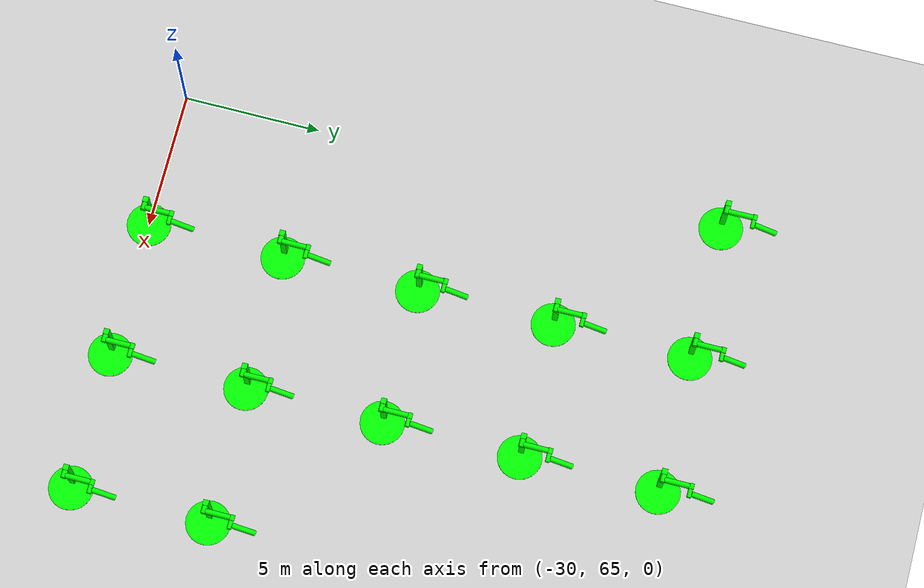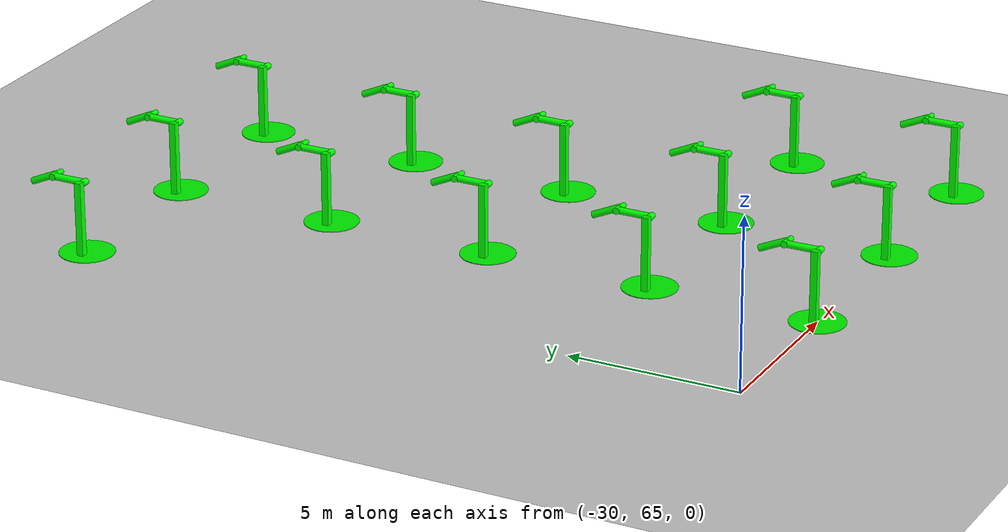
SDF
<sdf version="1.6">
 <world name="double_pendulums">
  <model name="ground_plane">
   <static>true</static>
   <link name="link">
    <collision name="collision">
     <geometry><plane><normal>0 0 1</normal><size>100 100</size></plane></geometry>
    </collision>
    <visual name="visual">
     <geometry><plane><normal>0 0 1</normal><size>100 100</size></plane></geometry>
     <material>
      <ambient>0.8 0.8 0.8 1</ambient>
      <diffuse>0.8 0.8 0.8 1</diffuse>
      <specular>0.8 0.8 0.8 1</specular>
     </material>
    </visual>
   </link>
  </model>
  <model name="dbl_pendulum_330">
   <pose>-25 65 0 0 0 0</pose>
   <link name="base">
    <inertial><mass>100</mass></inertial>
    <visual name="vis_plate_on_ground">
     <pose>0 0 0.01 0 0 0</pose>
     <geometry><cylinder><radius>0.8</radius><length>0.02</length></cylinder></geometry>
     <material><ambient>0 1 0 1</ambient><diffuse>0 1 0 1</diffuse><specular>0 1 0 1</specular></material>
    </visual>
    <visual name="vis_pole">
     <pose>-0.275 0 1.1 0 0 0</pose>
     <geometry><box><size>0.2 0.2 2.2</size></box></geometry>
     <material><ambient>0 1 0 1</ambient><diffuse>0 1 0 1</diffuse><specular>0 1 0 1</specular></material>
    </visual>
    <collision name="col_plate_on_ground">
     <pose>0 0 0.01 0 0 0</pose>
     <geometry><cylinder><radius>0.8</radius><length>0.02</length></cylinder></geometry>
    </collision>
    <collision name="col_pole">
     <pose>-0.275 0 1.1 0 0 0</pose>
     <geometry><box><size>0.2 0.2 2.2</size></box></geometry>
    </collision>
   </link>
   <link name="upper_link">
    <pose>0 0 2.1 -1.5708 0 0</pose>
    <inertial><pose>0 0 0.5 0 0 0</pose></inertial>
    <visual name="vis_upper_joint">
     <pose>-0.05 0 0 0 1.5708 0</pose>
     <geometry><cylinder><radius>0.1</radius><length>0.3</length></cylinder></geometry>
     <material><ambient>0 1 0 1</ambient><diffuse>0 1 0 1</diffuse><specular>0 1 0 1</specular></material>
    </visual>
    <visual name="vis_lower_joint">
     <pose>0 0 1.0 0 1.5708 0</pose>
     <geometry><cylinder><radius>0.1</radius><length>0.2</length></cylinder></geometry>
     <material><ambient>0 1 0 1</ambient><diffuse>0 1 0 1</diffuse><specular>0 1 0 1</specular></material>
    </visual>
    <visual name="vis_cylinder">
     <pose>0 0 0.5 0 0 0</pose>
     <geometry><cylinder><radius>0.1</radius><length>0.9</length></cylinder></geometry>
     <material><ambient>0 1 0 1</ambient><diffuse>0 1 0 1</diffuse><specular>0 1 0 1</specular></material>
    </visual>
    <collision name="col_upper_joint">
     <pose>-0.05 0 0 0 1.5708 0</pose>
     <geometry><cylinder><radius>0.1</radius><length>0.3</length></cylinder></geometry>
    </collision>
    <collision name="col_lower_joint">
     <pose>0 0 1.0 0 1.5708 0</pose>
     <geometry><cylinder><radius>0.1</radius><length>0.2</length></cylinder></geometry>
    </collision>
    <collision name="col_cylinder">
     <pose>0 0 0.5 0 0 0</pose>
     <geometry><cylinder><radius>0.1</radius><length>0.9</length></cylinder></geometry>
    </collision>
   </link>
   <link name="lower_link">
    <pose>0.25 1.0 2.1 -2 0 0</pose>
    <inertial><pose>0 0 0.5 0 0 0</pose></inertial>
    <visual name="vis_lower_joint">
     <pose>0 0 0 0 1.5708 0</pose>
     <geometry><cylinder><radius>0.08</radius><length>0.3</length></cylinder></geometry>
     <material><ambient>0 1 0 1</ambient><diffuse>0 1 0 1</diffuse><specular>0 1 0 1</specular></material>
    </visual>
    <visual name="vis_cylinder">
     <pose>0 0 0.5 0 0 0</pose>
     <geometry><cylinder><radius>0.1</radius><length>0.9</length></cylinder></geometry>
     <material><ambient>0 1 0 1</ambient><diffuse>0 1 0 1</diffuse><specular>0 1 0 1</specular></material>
    </visual>
    <collision name="col_lower_joint">
     <pose>0 0 0 0 1.5708 0</pose>
     <geometry><cylinder><radius>0.08</radius><length>0.3</length></cylinder></geometry>
    </collision>
    <collision name="col_cylinder">
     <pose>0 0 0.5 0 0 0</pose>
     <geometry><cylinder><radius>0.1</radius><length>0.9</length></cylinder></geometry>
    </collision>
   </link>
   <joint name="upper_joint" type="revolute">
    <parent>base</parent>
    <child>upper_link</child>
    <axis><xyz>1.0 0 0</xyz></axis>
   </joint>
   <joint name="lower_joint" type="revolute">
    <parent>upper_link</parent>
    <child>lower_link</child>
    <axis><xyz>1.0 0 0</xyz></axis>
   </joint>
  </model>
  <model name="dbl_pendulum_331">
   <pose>-20 65 0 0 0 0</pose>
   <link name="base">
    <inertial><mass>100</mass></inertial>
    <visual name="vis_plate_on_ground">
     <pose>0 0 0.01 0 0 0</pose>
     <geometry><cylinder><radius>0.8</radius><length>0.02</length></cylinder></geometry>
     <material><ambient>0 1 0 1</ambient><diffuse>0 1 0 1</diffuse><specular>0 1 0 1</specular></material>
    </visual>
    <visual name="vis_pole">
     <pose>-0.275 0 1.1 0 0 0</pose>
     <geometry><box><size>0.2 0.2 2.2</size></box></geometry>
     <material><ambient>0 1 0 1</ambient><diffuse>0 1 0 1</diffuse><specular>0 1 0 1</specular></material>
    </visual>
    <collision name="col_plate_on_ground">
     <pose>0 0 0.01 0 0 0</pose>
     <geometry><cylinder><radius>0.8</radius><length>0.02</length></cylinder></geometry>
    </collision>
    <collision name="col_pole">
     <pose>-0.275 0 1.1 0 0 0</pose>
     <geometry><box><size>0.2 0.2 2.2</size></box></geometry>
    </collision>
   </link>
   <link name="upper_link">
    <pose>0 0 2.1 -1.5708 0 0</pose>
    <inertial><pose>0 0 0.5 0 0 0</pose></inertial>
    <visual name="vis_upper_joint">
     <pose>-0.05 0 0 0 1.5708 0</pose>
     <geometry><cylinder><radius>0.1</radius><length>0.3</length></cylinder></geometry>
     <material><ambient>0 1 0 1</ambient><diffuse>0 1 0 1</diffuse><specular>0 1 0 1</specular></material>
    </visual>
    <visual name="vis_lower_joint">
     <pose>0 0 1.0 0 1.5708 0</pose>
     <geometry><cylinder><radius>0.1</radius><length>0.2</length></cylinder></geometry>
     <material><ambient>0 1 0 1</ambient><diffuse>0 1 0 1</diffuse><specular>0 1 0 1</specular></material>
    </visual>
    <visual name="vis_cylinder">
     <pose>0 0 0.5 0 0 0</pose>
     <geometry><cylinder><radius>0.1</radius><length>0.9</length></cylinder></geometry>
     <material><ambient>0 1 0 1</ambient><diffuse>0 1 0 1</diffuse><specular>0 1 0 1</specular></material>
    </visual>
    <collision name="col_upper_joint">
     <pose>-0.05 0 0 0 1.5708 0</pose>
     <geometry><cylinder><radius>0.1</radius><length>0.3</length></cylinder></geometry>
    </collision>
    <collision name="col_lower_joint">
     <pose>0 0 1.0 0 1.5708 0</pose>
     <geometry><cylinder><radius>0.1</radius><length>0.2</length></cylinder></geometry>
    </collision>
    <collision name="col_cylinder">
     <pose>0 0 0.5 0 0 0</pose>
     <geometry><cylinder><radius>0.1</radius><length>0.9</length></cylinder></geometry>
    </collision>
   </link>
   <link name="lower_link">
    <pose>0.25 1.0 2.1 -2 0 0</pose>
    <inertial><pose>0 0 0.5 0 0 0</pose></inertial>
    <visual name="vis_lower_joint">
     <pose>0 0 0 0 1.5708 0</pose>
     <geometry><cylinder><radius>0.08</radius><length>0.3</length></cylinder></geometry>
     <material><ambient>0 1 0 1</ambient><diffuse>0 1 0 1</diffuse><specular>0 1 0 1</specular></material>
    </visual>
    <visual name="vis_cylinder">
     <pose>0 0 0.5 0 0 0</pose>
     <geometry><cylinder><radius>0.1</radius><length>0.9</length></cylinder></geometry>
     <material><ambient>0 1 0 1</ambient><diffuse>0 1 0 1</diffuse><specular>0 1 0 1</specular></material>
    </visual>
    <collision name="col_lower_joint">
     <pose>0 0 0 0 1.5708 0</pose>
     <geometry><cylinder><radius>0.08</radius><length>0.3</length></cylinder></geometry>
    </collision>
    <collision name="col_cylinder">
     <pose>0 0 0.5 0 0 0</pose>
     <geometry><cylinder><radius>0.1</radius><length>0.9</length></cylinder></geometry>
    </collision>
   </link>
   <joint name="upper_joint" type="revolute">
    <parent>base</parent>
    <child>upper_link</child>
    <axis><xyz>1.0 0 0</xyz></axis>
   </joint>
   <joint name="lower_joint" type="revolute">
    <parent>upper_link</parent>
    <child>lower_link</child>
    <axis><xyz>1.0 0 0</xyz></axis>
   </joint>
  </model>
  <model name="dbl_pendulum_332">
   <pose>-15 65 0 0 0 0</pose>
   <link name="base">
    <inertial><mass>100</mass></inertial>
    <visual name="vis_plate_on_ground">
     <pose>0 0 0.01 0 0 0</pose>
     <geometry><cylinder><radius>0.8</radius><length>0.02</length></cylinder></geometry>
     <material><ambient>0 1 0 1</ambient><diffuse>0 1 0 1</diffuse><specular>0 1 0 1</specular></material>
    </visual>
    <visual name="vis_pole">
     <pose>-0.275 0 1.1 0 0 0</pose>
     <geometry><box><size>0.2 0.2 2.2</size></box></geometry>
     <material><ambient>0 1 0 1</ambient><diffuse>0 1 0 1</diffuse><specular>0 1 0 1</specular></material>
    </visual>
    <collision name="col_plate_on_ground">
     <pose>0 0 0.01 0 0 0</pose>
     <geometry><cylinder><radius>0.8</radius><length>0.02</length></cylinder></geometry>
    </collision>
    <collision name="col_pole">
     <pose>-0.275 0 1.1 0 0 0</pose>
     <geometry><box><size>0.2 0.2 2.2</size></box></geometry>
    </collision>
   </link>
   <link name="upper_link">
    <pose>0 0 2.1 -1.5708 0 0</pose>
    <inertial><pose>0 0 0.5 0 0 0</pose></inertial>
    <visual name="vis_upper_joint">
     <pose>-0.05 0 0 0 1.5708 0</pose>
     <geometry><cylinder><radius>0.1</radius><length>0.3</length></cylinder></geometry>
     <material><ambient>0 1 0 1</ambient><diffuse>0 1 0 1</diffuse><specular>0 1 0 1</specular></material>
    </visual>
    <visual name="vis_lower_joint">
     <pose>0 0 1.0 0 1.5708 0</pose>
     <geometry><cylinder><radius>0.1</radius><length>0.2</length></cylinder></geometry>
     <material><ambient>0 1 0 1</ambient><diffuse>0 1 0 1</diffuse><specular>0 1 0 1</specular></material>
    </visual>
    <visual name="vis_cylinder">
     <pose>0 0 0.5 0 0 0</pose>
     <geometry><cylinder><radius>0.1</radius><length>0.9</length></cylinder></geometry>
     <material><ambient>0 1 0 1</ambient><diffuse>0 1 0 1</diffuse><specular>0 1 0 1</specular></material>
    </visual>
    <collision name="col_upper_joint">
     <pose>-0.05 0 0 0 1.5708 0</pose>
     <geometry><cylinder><radius>0.1</radius><length>0.3</length></cylinder></geometry>
    </collision>
    <collision name="col_lower_joint">
     <pose>0 0 1.0 0 1.5708 0</pose>
     <geometry><cylinder><radius>0.1</radius><length>0.2</length></cylinder></geometry>
    </collision>
    <collision name="col_cylinder">
     <pose>0 0 0.5 0 0 0</pose>
     <geometry><cylinder><radius>0.1</radius><length>0.9</length></cylinder></geometry>
    </collision>
   </link>
   <link name="lower_link">
    <pose>0.25 1.0 2.1 -2 0 0</pose>
    <inertial><pose>0 0 0.5 0 0 0</pose></inertial>
    <visual name="vis_lower_joint">
     <pose>0 0 0 0 1.5708 0</pose>
     <geometry><cylinder><radius>0.08</radius><length>0.3</length></cylinder></geometry>
     <material><ambient>0 1 0 1</ambient><diffuse>0 1 0 1</diffuse><specular>0 1 0 1</specular></material>
    </visual>
    <visual name="vis_cylinder">
     <pose>0 0 0.5 0 0 0</pose>
     <geometry><cylinder><radius>0.1</radius><length>0.9</length></cylinder></geometry>
     <material><ambient>0 1 0 1</ambient><diffuse>0 1 0 1</diffuse><specular>0 1 0 1</specular></material>
    </visual>
    <collision name="col_lower_joint">
     <pose>0 0 0 0 1.5708 0</pose>
     <geometry><cylinder><radius>0.08</radius><length>0.3</length></cylinder></geometry>
    </collision>
    <collision name="col_cylinder">
     <pose>0 0 0.5 0 0 0</pose>
     <geometry><cylinder><radius>0.1</radius><length>0.9</length></cylinder></geometry>
    </collision>
   </link>
   <joint name="upper_joint" type="revolute">
    <parent>base</parent>
    <child>upper_link</child>
    <axis><xyz>1.0 0 0</xyz></axis>
   </joint>
   <joint name="lower_joint" type="revolute">
    <parent>upper_link</parent>
    <child>lower_link</child>
    <axis><xyz>1.0 0 0</xyz></axis>
   </joint>
  </model>
  <model name="dbl_pendulum_355">
   <pose>-25 70 0 0 0 0</pose>
   <link name="base">
    <inertial><mass>100</mass></inertial>
    <visual name="vis_plate_on_ground">
     <pose>0 0 0.01 0 0 0</pose>
     <geometry><cylinder><radius>0.8</radius><length>0.02</length></cylinder></geometry>
     <material><ambient>0 1 0 1</ambient><diffuse>0 1 0 1</diffuse><specular>0 1 0 1</specular></material>
    </visual>
    <visual name="vis_pole">
     <pose>-0.275 0 1.1 0 0 0</pose>
     <geometry><box><size>0.2 0.2 2.2</size></box></geometry>
     <material><ambient>0 1 0 1</ambient><diffuse>0 1 0 1</diffuse><specular>0 1 0 1</specular></material>
    </visual>
    <collision name="col_plate_on_ground">
     <pose>0 0 0.01 0 0 0</pose>
     <geometry><cylinder><radius>0.8</radius><length>0.02</length></cylinder></geometry>
    </collision>
    <collision name="col_pole">
     <pose>-0.275 0 1.1 0 0 0</pose>
     <geometry><box><size>0.2 0.2 2.2</size></box></geometry>
    </collision>
   </link>
   <link name="upper_link">
    <pose>0 0 2.1 -1.5708 0 0</pose>
    <inertial><pose>0 0 0.5 0 0 0</pose></inertial>
    <visual name="vis_upper_joint">
     <pose>-0.05 0 0 0 1.5708 0</pose>
     <geometry><cylinder><radius>0.1</radius><length>0.3</length></cylinder></geometry>
     <material><ambient>0 1 0 1</ambient><diffuse>0 1 0 1</diffuse><specular>0 1 0 1</specular></material>
    </visual>
    <visual name="vis_lower_joint">
     <pose>0 0 1.0 0 1.5708 0</pose>
     <geometry><cylinder><radius>0.1</radius><length>0.2</length></cylinder></geometry>
     <material><ambient>0 1 0 1</ambient><diffuse>0 1 0 1</diffuse><specular>0 1 0 1</specular></material>
    </visual>
    <visual name="vis_cylinder">
     <pose>0 0 0.5 0 0 0</pose>
     <geometry><cylinder><radius>0.1</radius><length>0.9</length></cylinder></geometry>
     <material><ambient>0 1 0 1</ambient><diffuse>0 1 0 1</diffuse><specular>0 1 0 1</specular></material>
    </visual>
    <collision name="col_upper_joint">
     <pose>-0.05 0 0 0 1.5708 0</pose>
     <geometry><cylinder><radius>0.1</radius><length>0.3</length></cylinder></geometry>
    </collision>
    <collision name="col_lower_joint">
     <pose>0 0 1.0 0 1.5708 0</pose>
     <geometry><cylinder><radius>0.1</radius><length>0.2</length></cylinder></geometry>
    </collision>
    <collision name="col_cylinder">
     <pose>0 0 0.5 0 0 0</pose>
     <geometry><cylinder><radius>0.1</radius><length>0.9</length></cylinder></geometry>
    </collision>
   </link>
   <link name="lower_link">
    <pose>0.25 1.0 2.1 -2 0 0</pose>
    <inertial><pose>0 0 0.5 0 0 0</pose></inertial>
    <visual name="vis_lower_joint">
     <pose>0 0 0 0 1.5708 0</pose>
     <geometry><cylinder><radius>0.08</radius><length>0.3</length></cylinder></geometry>
     <material><ambient>0 1 0 1</ambient><diffuse>0 1 0 1</diffuse><specular>0 1 0 1</specular></material>
    </visual>
    <visual name="vis_cylinder">
     <pose>0 0 0.5 0 0 0</pose>
     <geometry><cylinder><radius>0.1</radius><length>0.9</length></cylinder></geometry>
     <material><ambient>0 1 0 1</ambient><diffuse>0 1 0 1</diffuse><specular>0 1 0 1</specular></material>
    </visual>
    <collision name="col_lower_joint">
     <pose>0 0 0 0 1.5708 0</pose>
     <geometry><cylinder><radius>0.08</radius><length>0.3</length></cylinder></geometry>
    </collision>
    <collision name="col_cylinder">
     <pose>0 0 0.5 0 0 0</pose>
     <geometry><cylinder><radius>0.1</radius><length>0.9</length></cylinder></geometry>
    </collision>
   </link>
   <joint name="upper_joint" type="revolute">
    <parent>base</parent>
    <child>upper_link</child>
    <axis><xyz>1.0 0 0</xyz></axis>
   </joint>
   <joint name="lower_joint" type="revolute">
    <parent>upper_link</parent>
    <child>lower_link</child>
    <axis><xyz>1.0 0 0</xyz></axis>
   </joint>
  </model>
  <model name="dbl_pendulum_356">
   <pose>-20 70 0 0 0 0</pose>
   <link name="base">
    <inertial><mass>100</mass></inertial>
    <visual name="vis_plate_on_ground">
     <pose>0 0 0.01 0 0 0</pose>
     <geometry><cylinder><radius>0.8</radius><length>0.02</length></cylinder></geometry>
     <material><ambient>0 1 0 1</ambient><diffuse>0 1 0 1</diffuse><specular>0 1 0 1</specular></material>
    </visual>
    <visual name="vis_pole">
     <pose>-0.275 0 1.1 0 0 0</pose>
     <geometry><box><size>0.2 0.2 2.2</size></box></geometry>
     <material><ambient>0 1 0 1</ambient><diffuse>0 1 0 1</diffuse><specular>0 1 0 1</specular></material>
    </visual>
    <collision name="col_plate_on_ground">
     <pose>0 0 0.01 0 0 0</pose>
     <geometry><cylinder><radius>0.8</radius><length>0.02</length></cylinder></geometry>
    </collision>
    <collision name="col_pole">
     <pose>-0.275 0 1.1 0 0 0</pose>
     <geometry><box><size>0.2 0.2 2.2</size></box></geometry>
    </collision>
   </link>
   <link name="upper_link">
    <pose>0 0 2.1 -1.5708 0 0</pose>
    <inertial><pose>0 0 0.5 0 0 0</pose></inertial>
    <visual name="vis_upper_joint">
     <pose>-0.05 0 0 0 1.5708 0</pose>
     <geometry><cylinder><radius>0.1</radius><length>0.3</length></cylinder></geometry>
     <material><ambient>0 1 0 1</ambient><diffuse>0 1 0 1</diffuse><specular>0 1 0 1</specular></material>
    </visual>
    <visual name="vis_lower_joint">
     <pose>0 0 1.0 0 1.5708 0</pose>
     <geometry><cylinder><radius>0.1</radius><length>0.2</length></cylinder></geometry>
     <material><ambient>0 1 0 1</ambient><diffuse>0 1 0 1</diffuse><specular>0 1 0 1</specular></material>
    </visual>
    <visual name="vis_cylinder">
     <pose>0 0 0.5 0 0 0</pose>
     <geometry><cylinder><radius>0.1</radius><length>0.9</length></cylinder></geometry>
     <material><ambient>0 1 0 1</ambient><diffuse>0 1 0 1</diffuse><specular>0 1 0 1</specular></material>
    </visual>
    <collision name="col_upper_joint">
     <pose>-0.05 0 0 0 1.5708 0</pose>
     <geometry><cylinder><radius>0.1</radius><length>0.3</length></cylinder></geometry>
    </collision>
    <collision name="col_lower_joint">
     <pose>0 0 1.0 0 1.5708 0</pose>
     <geometry><cylinder><radius>0.1</radius><length>0.2</length></cylinder></geometry>
    </collision>
    <collision name="col_cylinder">
     <pose>0 0 0.5 0 0 0</pose>
     <geometry><cylinder><radius>0.1</radius><length>0.9</length></cylinder></geometry>
    </collision>
   </link>
   <link name="lower_link">
    <pose>0.25 1.0 2.1 -2 0 0</pose>
    <inertial><pose>0 0 0.5 0 0 0</pose></inertial>
    <visual name="vis_lower_joint">
     <pose>0 0 0 0 1.5708 0</pose>
     <geometry><cylinder><radius>0.08</radius><length>0.3</length></cylinder></geometry>
     <material><ambient>0 1 0 1</ambient><diffuse>0 1 0 1</diffuse><specular>0 1 0 1</specular></material>
    </visual>
    <visual name="vis_cylinder">
     <pose>0 0 0.5 0 0 0</pose>
     <geometry><cylinder><radius>0.1</radius><length>0.9</length></cylinder></geometry>
     <material><ambient>0 1 0 1</ambient><diffuse>0 1 0 1</diffuse><specular>0 1 0 1</specular></material>
    </visual>
    <collision name="col_lower_joint">
     <pose>0 0 0 0 1.5708 0</pose>
     <geometry><cylinder><radius>0.08</radius><length>0.3</length></cylinder></geometry>
    </collision>
    <collision name="col_cylinder">
     <pose>0 0 0.5 0 0 0</pose>
     <geometry><cylinder><radius>0.1</radius><length>0.9</length></cylinder></geometry>
    </collision>
   </link>
   <joint name="upper_joint" type="revolute">
    <parent>base</parent>
    <child>upper_link</child>
    <axis><xyz>1.0 0 0</xyz></axis>
   </joint>
   <joint name="lower_joint" type="revolute">
    <parent>upper_link</parent>
    <child>lower_link</child>
    <axis><xyz>1.0 0 0</xyz></axis>
   </joint>
  </model>
  <model name="dbl_pendulum_357">
   <pose>-15 70 0 0 0 0</pose>
   <link name="base">
    <inertial><mass>100</mass></inertial>
    <visual name="vis_plate_on_ground">
     <pose>0 0 0.01 0 0 0</pose>
     <geometry><cylinder><radius>0.8</radius><length>0.02</length></cylinder></geometry>
     <material><ambient>0 1 0 1</ambient><diffuse>0 1 0 1</diffuse><specular>0 1 0 1</specular></material>
    </visual>
    <visual name="vis_pole">
     <pose>-0.275 0 1.1 0 0 0</pose>
     <geometry><box><size>0.2 0.2 2.2</size></box></geometry>
     <material><ambient>0 1 0 1</ambient><diffuse>0 1 0 1</diffuse><specular>0 1 0 1</specular></material>
    </visual>
    <collision name="col_plate_on_ground">
     <pose>0 0 0.01 0 0 0</pose>
     <geometry><cylinder><radius>0.8</radius><length>0.02</length></cylinder></geometry>
    </collision>
    <collision name="col_pole">
     <pose>-0.275 0 1.1 0 0 0</pose>
     <geometry><box><size>0.2 0.2 2.2</size></box></geometry>
    </collision>
   </link>
   <link name="upper_link">
    <pose>0 0 2.1 -1.5708 0 0</pose>
    <inertial><pose>0 0 0.5 0 0 0</pose></inertial>
    <visual name="vis_upper_joint">
     <pose>-0.05 0 0 0 1.5708 0</pose>
     <geometry><cylinder><radius>0.1</radius><length>0.3</length></cylinder></geometry>
     <material><ambient>0 1 0 1</ambient><diffuse>0 1 0 1</diffuse><specular>0 1 0 1</specular></material>
    </visual>
    <visual name="vis_lower_joint">
     <pose>0 0 1.0 0 1.5708 0</pose>
     <geometry><cylinder><radius>0.1</radius><length>0.2</length></cylinder></geometry>
     <material><ambient>0 1 0 1</ambient><diffuse>0 1 0 1</diffuse><specular>0 1 0 1</specular></material>
    </visual>
    <visual name="vis_cylinder">
     <pose>0 0 0.5 0 0 0</pose>
     <geometry><cylinder><radius>0.1</radius><length>0.9</length></cylinder></geometry>
     <material><ambient>0 1 0 1</ambient><diffuse>0 1 0 1</diffuse><specular>0 1 0 1</specular></material>
    </visual>
    <collision name="col_upper_joint">
     <pose>-0.05 0 0 0 1.5708 0</pose>
     <geometry><cylinder><radius>0.1</radius><length>0.3</length></cylinder></geometry>
    </collision>
    <collision name="col_lower_joint">
     <pose>0 0 1.0 0 1.5708 0</pose>
     <geometry><cylinder><radius>0.1</radius><length>0.2</length></cylinder></geometry>
    </collision>
    <collision name="col_cylinder">
     <pose>0 0 0.5 0 0 0</pose>
     <geometry><cylinder><radius>0.1</radius><length>0.9</length></cylinder></geometry>
    </collision>
   </link>
   <link name="lower_link">
    <pose>0.25 1.0 2.1 -2 0 0</pose>
    <inertial><pose>0 0 0.5 0 0 0</pose></inertial>
    <visual name="vis_lower_joint">
     <pose>0 0 0 0 1.5708 0</pose>
     <geometry><cylinder><radius>0.08</radius><length>0.3</length></cylinder></geometry>
     <material><ambient>0 1 0 1</ambient><diffuse>0 1 0 1</diffuse><specular>0 1 0 1</specular></material>
    </visual>
    <visual name="vis_cylinder">
     <pose>0 0 0.5 0 0 0</pose>
     <geometry><cylinder><radius>0.1</radius><length>0.9</length></cylinder></geometry>
     <material><ambient>0 1 0 1</ambient><diffuse>0 1 0 1</diffuse><specular>0 1 0 1</specular></material>
    </visual>
    <collision name="col_lower_joint">
     <pose>0 0 0 0 1.5708 0</pose>
     <geometry><cylinder><radius>0.08</radius><length>0.3</length></cylinder></geometry>
    </collision>
    <collision name="col_cylinder">
     <pose>0 0 0.5 0 0 0</pose>
     <geometry><cylinder><radius>0.1</radius><length>0.9</length></cylinder></geometry>
    </collision>
   </link>
   <joint name="upper_joint" type="revolute">
    <parent>base</parent>
    <child>upper_link</child>
    <axis><xyz>1.0 0 0</xyz></axis>
   </joint>
   <joint name="lower_joint" type="revolute">
    <parent>upper_link</parent>
    <child>lower_link</child>
    <axis><xyz>1.0 0 0</xyz></axis>
   </joint>
  </model>
  <model name="dbl_pendulum_380">
   <pose>-25 75 0 0 0 0</pose>
   <link name="base">
    <inertial><mass>100</mass></inertial>
    <visual name="vis_plate_on_ground">
     <pose>0 0 0.01 0 0 0</pose>
     <geometry><cylinder><radius>0.8</radius><length>0.02</length></cylinder></geometry>
     <material><ambient>0 1 0 1</ambient><diffuse>0 1 0 1</diffuse><specular>0 1 0 1</specular></material>
    </visual>
    <visual name="vis_pole">
     <pose>-0.275 0 1.1 0 0 0</pose>
     <geometry><box><size>0.2 0.2 2.2</size></box></geometry>
     <material><ambient>0 1 0 1</ambient><diffuse>0 1 0 1</diffuse><specular>0 1 0 1</specular></material>
    </visual>
    <collision name="col_plate_on_ground">
     <pose>0 0 0.01 0 0 0</pose>
     <geometry><cylinder><radius>0.8</radius><length>0.02</length></cylinder></geometry>
    </collision>
    <collision name="col_pole">
     <pose>-0.275 0 1.1 0 0 0</pose>
     <geometry><box><size>0.2 0.2 2.2</size></box></geometry>
    </collision>
   </link>
   <link name="upper_link">
    <pose>0 0 2.1 -1.5708 0 0</pose>
    <inertial><pose>0 0 0.5 0 0 0</pose></inertial>
    <visual name="vis_upper_joint">
     <pose>-0.05 0 0 0 1.5708 0</pose>
     <geometry><cylinder><radius>0.1</radius><length>0.3</length></cylinder></geometry>
     <material><ambient>0 1 0 1</ambient><diffuse>0 1 0 1</diffuse><specular>0 1 0 1</specular></material>
    </visual>
    <visual name="vis_lower_joint">
     <pose>0 0 1.0 0 1.5708 0</pose>
     <geometry><cylinder><radius>0.1</radius><length>0.2</length></cylinder></geometry>
     <material><ambient>0 1 0 1</ambient><diffuse>0 1 0 1</diffuse><specular>0 1 0 1</specular></material>
    </visual>
    <visual name="vis_cylinder">
     <pose>0 0 0.5 0 0 0</pose>
     <geometry><cylinder><radius>0.1</radius><length>0.9</length></cylinder></geometry>
     <material><ambient>0 1 0 1</ambient><diffuse>0 1 0 1</diffuse><specular>0 1 0 1</specular></material>
    </visual>
    <collision name="col_upper_joint">
     <pose>-0.05 0 0 0 1.5708 0</pose>
     <geometry><cylinder><radius>0.1</radius><length>0.3</length></cylinder></geometry>
    </collision>
    <collision name="col_lower_joint">
     <pose>0 0 1.0 0 1.5708 0</pose>
     <geometry><cylinder><radius>0.1</radius><length>0.2</length></cylinder></geometry>
    </collision>
    <collision name="col_cylinder">
     <pose>0 0 0.5 0 0 0</pose>
     <geometry><cylinder><radius>0.1</radius><length>0.9</length></cylinder></geometry>
    </collision>
   </link>
   <link name="lower_link">
    <pose>0.25 1.0 2.1 -2 0 0</pose>
    <inertial><pose>0 0 0.5 0 0 0</pose></inertial>
    <visual name="vis_lower_joint">
     <pose>0 0 0 0 1.5708 0</pose>
     <geometry><cylinder><radius>0.08</radius><length>0.3</length></cylinder></geometry>
     <material><ambient>0 1 0 1</ambient><diffuse>0 1 0 1</diffuse><specular>0 1 0 1</specular></material>
    </visual>
    <visual name="vis_cylinder">
     <pose>0 0 0.5 0 0 0</pose>
     <geometry><cylinder><radius>0.1</radius><length>0.9</length></cylinder></geometry>
     <material><ambient>0 1 0 1</ambient><diffuse>0 1 0 1</diffuse><specular>0 1 0 1</specular></material>
    </visual>
    <collision name="col_lower_joint">
     <pose>0 0 0 0 1.5708 0</pose>
     <geometry><cylinder><radius>0.08</radius><length>0.3</length></cylinder></geometry>
    </collision>
    <collision name="col_cylinder">
     <pose>0 0 0.5 0 0 0</pose>
     <geometry><cylinder><radius>0.1</radius><length>0.9</length></cylinder></geometry>
    </collision>
   </link>
   <joint name="upper_joint" type="revolute">
    <parent>base</parent>
    <child>upper_link</child>
    <axis><xyz>1.0 0 0</xyz></axis>
   </joint>
   <joint name="lower_joint" type="revolute">
    <parent>upper_link</parent>
    <child>lower_link</child>
    <axis><xyz>1.0 0 0</xyz></axis>
   </joint>
  </model>
  <model name="dbl_pendulum_381">
   <pose>-20 75 0 0 0 0</pose>
   <link name="base">
    <inertial><mass>100</mass></inertial>
    <visual name="vis_plate_on_ground">
     <pose>0 0 0.01 0 0 0</pose>
     <geometry><cylinder><radius>0.8</radius><length>0.02</length></cylinder></geometry>
     <material><ambient>0 1 0 1</ambient><diffuse>0 1 0 1</diffuse><specular>0 1 0 1</specular></material>
    </visual>
    <visual name="vis_pole">
     <pose>-0.275 0 1.1 0 0 0</pose>
     <geometry><box><size>0.2 0.2 2.2</size></box></geometry>
     <material><ambient>0 1 0 1</ambient><diffuse>0 1 0 1</diffuse><specular>0 1 0 1</specular></material>
    </visual>
    <collision name="col_plate_on_ground">
     <pose>0 0 0.01 0 0 0</pose>
     <geometry><cylinder><radius>0.8</radius><length>0.02</length></cylinder></geometry>
    </collision>
    <collision name="col_pole">
     <pose>-0.275 0 1.1 0 0 0</pose>
     <geometry><box><size>0.2 0.2 2.2</size></box></geometry>
    </collision>
   </link>
   <link name="upper_link">
    <pose>0 0 2.1 -1.5708 0 0</pose>
    <inertial><pose>0 0 0.5 0 0 0</pose></inertial>
    <visual name="vis_upper_joint">
     <pose>-0.05 0 0 0 1.5708 0</pose>
     <geometry><cylinder><radius>0.1</radius><length>0.3</length></cylinder></geometry>
     <material><ambient>0 1 0 1</ambient><diffuse>0 1 0 1</diffuse><specular>0 1 0 1</specular></material>
    </visual>
    <visual name="vis_lower_joint">
     <pose>0 0 1.0 0 1.5708 0</pose>
     <geometry><cylinder><radius>0.1</radius><length>0.2</length></cylinder></geometry>
     <material><ambient>0 1 0 1</ambient><diffuse>0 1 0 1</diffuse><specular>0 1 0 1</specular></material>
    </visual>
    <visual name="vis_cylinder">
     <pose>0 0 0.5 0 0 0</pose>
     <geometry><cylinder><radius>0.1</radius><length>0.9</length></cylinder></geometry>
     <material><ambient>0 1 0 1</ambient><diffuse>0 1 0 1</diffuse><specular>0 1 0 1</specular></material>
    </visual>
    <collision name="col_upper_joint">
     <pose>-0.05 0 0 0 1.5708 0</pose>
     <geometry><cylinder><radius>0.1</radius><length>0.3</length></cylinder></geometry>
    </collision>
    <collision name="col_lower_joint">
     <pose>0 0 1.0 0 1.5708 0</pose>
     <geometry><cylinder><radius>0.1</radius><length>0.2</length></cylinder></geometry>
    </collision>
    <collision name="col_cylinder">
     <pose>0 0 0.5 0 0 0</pose>
     <geometry><cylinder><radius>0.1</radius><length>0.9</length></cylinder></geometry>
    </collision>
   </link>
   <link name="lower_link">
    <pose>0.25 1.0 2.1 -2 0 0</pose>
    <inertial><pose>0 0 0.5 0 0 0</pose></inertial>
    <visual name="vis_lower_joint">
     <pose>0 0 0 0 1.5708 0</pose>
     <geometry><cylinder><radius>0.08</radius><length>0.3</length></cylinder></geometry>
     <material><ambient>0 1 0 1</ambient><diffuse>0 1 0 1</diffuse><specular>0 1 0 1</specular></material>
    </visual>
    <visual name="vis_cylinder">
     <pose>0 0 0.5 0 0 0</pose>
     <geometry><cylinder><radius>0.1</radius><length>0.9</length></cylinder></geometry>
     <material><ambient>0 1 0 1</ambient><diffuse>0 1 0 1</diffuse><specular>0 1 0 1</specular></material>
    </visual>
    <collision name="col_lower_joint">
     <pose>0 0 0 0 1.5708 0</pose>
     <geometry><cylinder><radius>0.08</radius><length>0.3</length></cylinder></geometry>
    </collision>
    <collision name="col_cylinder">
     <pose>0 0 0.5 0 0 0</pose>
     <geometry><cylinder><radius>0.1</radius><length>0.9</length></cylinder></geometry>
    </collision>
   </link>
   <joint name="upper_joint" type="revolute">
    <parent>base</parent>
    <child>upper_link</child>
    <axis><xyz>1.0 0 0</xyz></axis>
   </joint>
   <joint name="lower_joint" type="revolute">
    <parent>upper_link</parent>
    <child>lower_link</child>
    <axis><xyz>1.0 0 0</xyz></axis>
   </joint>
  </model>
  <model name="dbl_pendulum_405">
   <pose>-25 80 0 0 0 0</pose>
   <link name="base">
    <inertial><mass>100</mass></inertial>
    <visual name="vis_plate_on_ground">
     <pose>0 0 0.01 0 0 0</pose>
     <geometry><cylinder><radius>0.8</radius><length>0.02</length></cylinder></geometry>
     <material><ambient>0 1 0 1</ambient><diffuse>0 1 0 1</diffuse><specular>0 1 0 1</specular></material>
    </visual>
    <visual name="vis_pole">
     <pose>-0.275 0 1.1 0 0 0</pose>
     <geometry><box><size>0.2 0.2 2.2</size></box></geometry>
     <material><ambient>0 1 0 1</ambient><diffuse>0 1 0 1</diffuse><specular>0 1 0 1</specular></material>
    </visual>
    <collision name="col_plate_on_ground">
     <pose>0 0 0.01 0 0 0</pose>
     <geometry><cylinder><radius>0.8</radius><length>0.02</length></cylinder></geometry>
    </collision>
    <collision name="col_pole">
     <pose>-0.275 0 1.1 0 0 0</pose>
     <geometry><box><size>0.2 0.2 2.2</size></box></geometry>
    </collision>
   </link>
   <link name="upper_link">
    <pose>0 0 2.1 -1.5708 0 0</pose>
    <inertial><pose>0 0 0.5 0 0 0</pose></inertial>
    <visual name="vis_upper_joint">
     <pose>-0.05 0 0 0 1.5708 0</pose>
     <geometry><cylinder><radius>0.1</radius><length>0.3</length></cylinder></geometry>
     <material><ambient>0 1 0 1</ambient><diffuse>0 1 0 1</diffuse><specular>0 1 0 1</specular></material>
    </visual>
    <visual name="vis_lower_joint">
     <pose>0 0 1.0 0 1.5708 0</pose>
     <geometry><cylinder><radius>0.1</radius><length>0.2</length></cylinder></geometry>
     <material><ambient>0 1 0 1</ambient><diffuse>0 1 0 1</diffuse><specular>0 1 0 1</specular></material>
    </visual>
    <visual name="vis_cylinder">
     <pose>0 0 0.5 0 0 0</pose>
     <geometry><cylinder><radius>0.1</radius><length>0.9</length></cylinder></geometry>
     <material><ambient>0 1 0 1</ambient><diffuse>0 1 0 1</diffuse><specular>0 1 0 1</specular></material>
    </visual>
    <collision name="col_upper_joint">
     <pose>-0.05 0 0 0 1.5708 0</pose>
     <geometry><cylinder><radius>0.1</radius><length>0.3</length></cylinder></geometry>
    </collision>
    <collision name="col_lower_joint">
     <pose>0 0 1.0 0 1.5708 0</pose>
     <geometry><cylinder><radius>0.1</radius><length>0.2</length></cylinder></geometry>
    </collision>
    <collision name="col_cylinder">
     <pose>0 0 0.5 0 0 0</pose>
     <geometry><cylinder><radius>0.1</radius><length>0.9</length></cylinder></geometry>
    </collision>
   </link>
   <link name="lower_link">
    <pose>0.25 1.0 2.1 -2 0 0</pose>
    <inertial><pose>0 0 0.5 0 0 0</pose></inertial>
    <visual name="vis_lower_joint">
     <pose>0 0 0 0 1.5708 0</pose>
     <geometry><cylinder><radius>0.08</radius><length>0.3</length></cylinder></geometry>
     <material><ambient>0 1 0 1</ambient><diffuse>0 1 0 1</diffuse><specular>0 1 0 1</specular></material>
    </visual>
    <visual name="vis_cylinder">
     <pose>0 0 0.5 0 0 0</pose>
     <geometry><cylinder><radius>0.1</radius><length>0.9</length></cylinder></geometry>
     <material><ambient>0 1 0 1</ambient><diffuse>0 1 0 1</diffuse><specular>0 1 0 1</specular></material>
    </visual>
    <collision name="col_lower_joint">
     <pose>0 0 0 0 1.5708 0</pose>
     <geometry><cylinder><radius>0.08</radius><length>0.3</length></cylinder></geometry>
    </collision>
    <collision name="col_cylinder">
     <pose>0 0 0.5 0 0 0</pose>
     <geometry><cylinder><radius>0.1</radius><length>0.9</length></cylinder></geometry>
    </collision>
   </link>
   <joint name="upper_joint" type="revolute">
    <parent>base</parent>
    <child>upper_link</child>
    <axis><xyz>1.0 0 0</xyz></axis>
   </joint>
   <joint name="lower_joint" type="revolute">
    <parent>upper_link</parent>
    <child>lower_link</child>
    <axis><xyz>1.0 0 0</xyz></axis>
   </joint>
  </model>
  <model name="dbl_pendulum_406">
   <pose>-20 80 0 0 0 0</pose>
   <link name="base">
    <inertial><mass>100</mass></inertial>
    <visual name="vis_plate_on_ground">
     <pose>0 0 0.01 0 0 0</pose>
     <geometry><cylinder><radius>0.8</radius><length>0.02</length></cylinder></geometry>
     <material><ambient>0 1 0 1</ambient><diffuse>0 1 0 1</diffuse><specular>0 1 0 1</specular></material>
    </visual>
    <visual name="vis_pole">
     <pose>-0.275 0 1.1 0 0 0</pose>
     <geometry><box><size>0.2 0.2 2.2</size></box></geometry>
     <material><ambient>0 1 0 1</ambient><diffuse>0 1 0 1</diffuse><specular>0 1 0 1</specular></material>
    </visual>
    <collision name="col_plate_on_ground">
     <pose>0 0 0.01 0 0 0</pose>
     <geometry><cylinder><radius>0.8</radius><length>0.02</length></cylinder></geometry>
    </collision>
    <collision name="col_pole">
     <pose>-0.275 0 1.1 0 0 0</pose>
     <geometry><box><size>0.2 0.2 2.2</size></box></geometry>
    </collision>
   </link>
   <link name="upper_link">
    <pose>0 0 2.1 -1.5708 0 0</pose>
    <inertial><pose>0 0 0.5 0 0 0</pose></inertial>
    <visual name="vis_upper_joint">
     <pose>-0.05 0 0 0 1.5708 0</pose>
     <geometry><cylinder><radius>0.1</radius><length>0.3</length></cylinder></geometry>
     <material><ambient>0 1 0 1</ambient><diffuse>0 1 0 1</diffuse><specular>0 1 0 1</specular></material>
    </visual>
    <visual name="vis_lower_joint">
     <pose>0 0 1.0 0 1.5708 0</pose>
     <geometry><cylinder><radius>0.1</radius><length>0.2</length></cylinder></geometry>
     <material><ambient>0 1 0 1</ambient><diffuse>0 1 0 1</diffuse><specular>0 1 0 1</specular></material>
    </visual>
    <visual name="vis_cylinder">
     <pose>0 0 0.5 0 0 0</pose>
     <geometry><cylinder><radius>0.1</radius><length>0.9</length></cylinder></geometry>
     <material><ambient>0 1 0 1</ambient><diffuse>0 1 0 1</diffuse><specular>0 1 0 1</specular></material>
    </visual>
    <collision name="col_upper_joint">
     <pose>-0.05 0 0 0 1.5708 0</pose>
     <geometry><cylinder><radius>0.1</radius><length>0.3</length></cylinder></geometry>
    </collision>
    <collision name="col_lower_joint">
     <pose>0 0 1.0 0 1.5708 0</pose>
     <geometry><cylinder><radius>0.1</radius><length>0.2</length></cylinder></geometry>
    </collision>
    <collision name="col_cylinder">
     <pose>0 0 0.5 0 0 0</pose>
     <geometry><cylinder><radius>0.1</radius><length>0.9</length></cylinder></geometry>
    </collision>
   </link>
   <link name="lower_link">
    <pose>0.25 1.0 2.1 -2 0 0</pose>
    <inertial><pose>0 0 0.5 0 0 0</pose></inertial>
    <visual name="vis_lower_joint">
     <pose>0 0 0 0 1.5708 0</pose>
     <geometry><cylinder><radius>0.08</radius><length>0.3</length></cylinder></geometry>
     <material><ambient>0 1 0 1</ambient><diffuse>0 1 0 1</diffuse><specular>0 1 0 1</specular></material>
    </visual>
    <visual name="vis_cylinder">
     <pose>0 0 0.5 0 0 0</pose>
     <geometry><cylinder><radius>0.1</radius><length>0.9</length></cylinder></geometry>
     <material><ambient>0 1 0 1</ambient><diffuse>0 1 0 1</diffuse><specular>0 1 0 1</specular></material>
    </visual>
    <collision name="col_lower_joint">
     <pose>0 0 0 0 1.5708 0</pose>
     <geometry><cylinder><radius>0.08</radius><length>0.3</length></cylinder></geometry>
    </collision>
    <collision name="col_cylinder">
     <pose>0 0 0.5 0 0 0</pose>
     <geometry><cylinder><radius>0.1</radius><length>0.9</length></cylinder></geometry>
    </collision>
   </link>
   <joint name="upper_joint" type="revolute">
    <parent>base</parent>
    <child>upper_link</child>
    <axis><xyz>1.0 0 0</xyz></axis>
   </joint>
   <joint name="lower_joint" type="revolute">
    <parent>upper_link</parent>
    <child>lower_link</child>
    <axis><xyz>1.0 0 0</xyz></axis>
   </joint>
  </model>
  <model name="dbl_pendulum_429">
   <pose>-30 85 0 0 0 0</pose>
   <link name="base">
    <inertial><mass>100</mass></inertial>
    <visual name="vis_plate_on_ground">
     <pose>0 0 0.01 0 0 0</pose>
     <geometry><cylinder><radius>0.8</radius><length>0.02</length></cylinder></geometry>
     <material><ambient>0 1 0 1</ambient><diffuse>0 1 0 1</diffuse><specular>0 1 0 1</specular></material>
    </visual>
    <visual name="vis_pole">
     <pose>-0.275 0 1.1 0 0 0</pose>
     <geometry><box><size>0.2 0.2 2.2</size></box></geometry>
     <material><ambient>0 1 0 1</ambient><diffuse>0 1 0 1</diffuse><specular>0 1 0 1</specular></material>
    </visual>
    <collision name="col_plate_on_ground">
     <pose>0 0 0.01 0 0 0</pose>
     <geometry><cylinder><radius>0.8</radius><length>0.02</length></cylinder></geometry>
    </collision>
    <collision name="col_pole">
     <pose>-0.275 0 1.1 0 0 0</pose>
     <geometry><box><size>0.2 0.2 2.2</size></box></geometry>
    </collision>
   </link>
   <link name="upper_link">
    <pose>0 0 2.1 -1.5708 0 0</pose>
    <inertial><pose>0 0 0.5 0 0 0</pose></inertial>
    <visual name="vis_upper_joint">
     <pose>-0.05 0 0 0 1.5708 0</pose>
     <geometry><cylinder><radius>0.1</radius><length>0.3</length></cylinder></geometry>
     <material><ambient>0 1 0 1</ambient><diffuse>0 1 0 1</diffuse><specular>0 1 0 1</specular></material>
    </visual>
    <visual name="vis_lower_joint">
     <pose>0 0 1.0 0 1.5708 0</pose>
     <geometry><cylinder><radius>0.1</radius><length>0.2</length></cylinder></geometry>
     <material><ambient>0 1 0 1</ambient><diffuse>0 1 0 1</diffuse><specular>0 1 0 1</specular></material>
    </visual>
    <visual name="vis_cylinder">
     <pose>0 0 0.5 0 0 0</pose>
     <geometry><cylinder><radius>0.1</radius><length>0.9</length></cylinder></geometry>
     <material><ambient>0 1 0 1</ambient><diffuse>0 1 0 1</diffuse><specular>0 1 0 1</specular></material>
    </visual>
    <collision name="col_upper_joint">
     <pose>-0.05 0 0 0 1.5708 0</pose>
     <geometry><cylinder><radius>0.1</radius><length>0.3</length></cylinder></geometry>
    </collision>
    <collision name="col_lower_joint">
     <pose>0 0 1.0 0 1.5708 0</pose>
     <geometry><cylinder><radius>0.1</radius><length>0.2</length></cylinder></geometry>
    </collision>
    <collision name="col_cylinder">
     <pose>0 0 0.5 0 0 0</pose>
     <geometry><cylinder><radius>0.1</radius><length>0.9</length></cylinder></geometry>
    </collision>
   </link>
   <link name="lower_link">
    <pose>0.25 1.0 2.1 -2 0 0</pose>
    <inertial><pose>0 0 0.5 0 0 0</pose></inertial>
    <visual name="vis_lower_joint">
     <pose>0 0 0 0 1.5708 0</pose>
     <geometry><cylinder><radius>0.08</radius><length>0.3</length></cylinder></geometry>
     <material><ambient>0 1 0 1</ambient><diffuse>0 1 0 1</diffuse><specular>0 1 0 1</specular></material>
    </visual>
    <visual name="vis_cylinder">
     <pose>0 0 0.5 0 0 0</pose>
     <geometry><cylinder><radius>0.1</radius><length>0.9</length></cylinder></geometry>
     <material><ambient>0 1 0 1</ambient><diffuse>0 1 0 1</diffuse><specular>0 1 0 1</specular></material>
    </visual>
    <collision name="col_lower_joint">
     <pose>0 0 0 0 1.5708 0</pose>
     <geometry><cylinder><radius>0.08</radius><length>0.3</length></cylinder></geometry>
    </collision>
    <collision name="col_cylinder">
     <pose>0 0 0.5 0 0 0</pose>
     <geometry><cylinder><radius>0.1</radius><length>0.9</length></cylinder></geometry>
    </collision>
   </link>
   <joint name="upper_joint" type="revolute">
    <parent>base</parent>
    <child>upper_link</child>
    <axis><xyz>1.0 0 0</xyz></axis>
   </joint>
   <joint name="lower_joint" type="revolute">
    <parent>upper_link</parent>
    <child>lower_link</child>
    <axis><xyz>1.0 0 0</xyz></axis>
   </joint>
  </model>
  <model name="dbl_pendulum_430">
   <pose>-25 85 0 0 0 0</pose>
   <link name="base">
    <inertial><mass>100</mass></inertial>
    <visual name="vis_plate_on_ground">
     <pose>0 0 0.01 0 0 0</pose>
     <geometry><cylinder><radius>0.8</radius><length>0.02</length></cylinder></geometry>
     <material><ambient>0 1 0 1</ambient><diffuse>0 1 0 1</diffuse><specular>0 1 0 1</specular></material>
    </visual>
    <visual name="vis_pole">
     <pose>-0.275 0 1.1 0 0 0</pose>
     <geometry><box><size>0.2 0.2 2.2</size></box></geometry>
     <material><ambient>0 1 0 1</ambient><diffuse>0 1 0 1</diffuse><specular>0 1 0 1</specular></material>
    </visual>
    <collision name="col_plate_on_ground">
     <pose>0 0 0.01 0 0 0</pose>
     <geometry><cylinder><radius>0.8</radius><length>0.02</length></cylinder></geometry>
    </collision>
    <collision name="col_pole">
     <pose>-0.275 0 1.1 0 0 0</pose>
     <geometry><box><size>0.2 0.2 2.2</size></box></geometry>
    </collision>
   </link>
   <link name="upper_link">
    <pose>0 0 2.1 -1.5708 0 0</pose>
    <inertial><pose>0 0 0.5 0 0 0</pose></inertial>
    <visual name="vis_upper_joint">
     <pose>-0.05 0 0 0 1.5708 0</pose>
     <geometry><cylinder><radius>0.1</radius><length>0.3</length></cylinder></geometry>
     <material><ambient>0 1 0 1</ambient><diffuse>0 1 0 1</diffuse><specular>0 1 0 1</specular></material>
    </visual>
    <visual name="vis_lower_joint">
     <pose>0 0 1.0 0 1.5708 0</pose>
     <geometry><cylinder><radius>0.1</radius><length>0.2</length></cylinder></geometry>
     <material><ambient>0 1 0 1</ambient><diffuse>0 1 0 1</diffuse><specular>0 1 0 1</specular></material>
    </visual>
    <visual name="vis_cylinder">
     <pose>0 0 0.5 0 0 0</pose>
     <geometry><cylinder><radius>0.1</radius><length>0.9</length></cylinder></geometry>
     <material><ambient>0 1 0 1</ambient><diffuse>0 1 0 1</diffuse><specular>0 1 0 1</specular></material>
    </visual>
    <collision name="col_upper_joint">
     <pose>-0.05 0 0 0 1.5708 0</pose>
     <geometry><cylinder><radius>0.1</radius><length>0.3</length></cylinder></geometry>
    </collision>
    <collision name="col_lower_joint">
     <pose>0 0 1.0 0 1.5708 0</pose>
     <geometry><cylinder><radius>0.1</radius><length>0.2</length></cylinder></geometry>
    </collision>
    <collision name="col_cylinder">
     <pose>0 0 0.5 0 0 0</pose>
     <geometry><cylinder><radius>0.1</radius><length>0.9</length></cylinder></geometry>
    </collision>
   </link>
   <link name="lower_link">
    <pose>0.25 1.0 2.1 -2 0 0</pose>
    <inertial><pose>0 0 0.5 0 0 0</pose></inertial>
    <visual name="vis_lower_joint">
     <pose>0 0 0 0 1.5708 0</pose>
     <geometry><cylinder><radius>0.08</radius><length>0.3</length></cylinder></geometry>
     <material><ambient>0 1 0 1</ambient><diffuse>0 1 0 1</diffuse><specular>0 1 0 1</specular></material>
    </visual>
    <visual name="vis_cylinder">
     <pose>0 0 0.5 0 0 0</pose>
     <geometry><cylinder><radius>0.1</radius><length>0.9</length></cylinder></geometry>
     <material><ambient>0 1 0 1</ambient><diffuse>0 1 0 1</diffuse><specular>0 1 0 1</specular></material>
    </visual>
    <collision name="col_lower_joint">
     <pose>0 0 0 0 1.5708 0</pose>
     <geometry><cylinder><radius>0.08</radius><length>0.3</length></cylinder></geometry>
    </collision>
    <collision name="col_cylinder">
     <pose>0 0 0.5 0 0 0</pose>
     <geometry><cylinder><radius>0.1</radius><length>0.9</length></cylinder></geometry>
    </collision>
   </link>
   <joint name="upper_joint" type="revolute">
    <parent>base</parent>
    <child>upper_link</child>
    <axis><xyz>1.0 0 0</xyz></axis>
   </joint>
   <joint name="lower_joint" type="revolute">
    <parent>upper_link</parent>
    <child>lower_link</child>
    <axis><xyz>1.0 0 0</xyz></axis>
   </joint>
  </model>
  <model name="dbl_pendulum_431">
   <pose>-20 85 0 0 0 0</pose>
   <link name="base">
    <inertial><mass>100</mass></inertial>
    <visual name="vis_plate_on_ground">
     <pose>0 0 0.01 0 0 0</pose>
     <geometry><cylinder><radius>0.8</radius><length>0.02</length></cylinder></geometry>
     <material><ambient>0 1 0 1</ambient><diffuse>0 1 0 1</diffuse><specular>0 1 0 1</specular></material>
    </visual>
    <visual name="vis_pole">
     <pose>-0.275 0 1.1 0 0 0</pose>
     <geometry><box><size>0.2 0.2 2.2</size></box></geometry>
     <material><ambient>0 1 0 1</ambient><diffuse>0 1 0 1</diffuse><specular>0 1 0 1</specular></material>
    </visual>
    <collision name="col_plate_on_ground">
     <pose>0 0 0.01 0 0 0</pose>
     <geometry><cylinder><radius>0.8</radius><length>0.02</length></cylinder></geometry>
    </collision>
    <collision name="col_pole">
     <pose>-0.275 0 1.1 0 0 0</pose>
     <geometry><box><size>0.2 0.2 2.2</size></box></geometry>
    </collision>
   </link>
   <link name="upper_link">
    <pose>0 0 2.1 -1.5708 0 0</pose>
    <inertial><pose>0 0 0.5 0 0 0</pose></inertial>
    <visual name="vis_upper_joint">
     <pose>-0.05 0 0 0 1.5708 0</pose>
     <geometry><cylinder><radius>0.1</radius><length>0.3</length></cylinder></geometry>
     <material><ambient>0 1 0 1</ambient><diffuse>0 1 0 1</diffuse><specular>0 1 0 1</specular></material>
    </visual>
    <visual name="vis_lower_joint">
     <pose>0 0 1.0 0 1.5708 0</pose>
     <geometry><cylinder><radius>0.1</radius><length>0.2</length></cylinder></geometry>
     <material><ambient>0 1 0 1</ambient><diffuse>0 1 0 1</diffuse><specular>0 1 0 1</specular></material>
    </visual>
    <visual name="vis_cylinder">
     <pose>0 0 0.5 0 0 0</pose>
     <geometry><cylinder><radius>0.1</radius><length>0.9</length></cylinder></geometry>
     <material><ambient>0 1 0 1</ambient><diffuse>0 1 0 1</diffuse><specular>0 1 0 1</specular></material>
    </visual>
    <collision name="col_upper_joint">
     <pose>-0.05 0 0 0 1.5708 0</pose>
     <geometry><cylinder><radius>0.1</radius><length>0.3</length></cylinder></geometry>
    </collision>
    <collision name="col_lower_joint">
     <pose>0 0 1.0 0 1.5708 0</pose>
     <geometry><cylinder><radius>0.1</radius><length>0.2</length></cylinder></geometry>
    </collision>
    <collision name="col_cylinder">
     <pose>0 0 0.5 0 0 0</pose>
     <geometry><cylinder><radius>0.1</radius><length>0.9</length></cylinder></geometry>
    </collision>
   </link>
   <link name="lower_link">
    <pose>0.25 1.0 2.1 -2 0 0</pose>
    <inertial><pose>0 0 0.5 0 0 0</pose></inertial>
    <visual name="vis_lower_joint">
     <pose>0 0 0 0 1.5708 0</pose>
     <geometry><cylinder><radius>0.08</radius><length>0.3</length></cylinder></geometry>
     <material><ambient>0 1 0 1</ambient><diffuse>0 1 0 1</diffuse><specular>0 1 0 1</specular></material>
    </visual>
    <visual name="vis_cylinder">
     <pose>0 0 0.5 0 0 0</pose>
     <geometry><cylinder><radius>0.1</radius><length>0.9</length></cylinder></geometry>
     <material><ambient>0 1 0 1</ambient><diffuse>0 1 0 1</diffuse><specular>0 1 0 1</specular></material>
    </visual>
    <collision name="col_lower_joint">
     <pose>0 0 0 0 1.5708 0</pose>
     <geometry><cylinder><radius>0.08</radius><length>0.3</length></cylinder></geometry>
    </collision>
    <collision name="col_cylinder">
     <pose>0 0 0.5 0 0 0</pose>
     <geometry><cylinder><radius>0.1</radius><length>0.9</length></cylinder></geometry>
    </collision>
   </link>
   <joint name="upper_joint" type="revolute">
    <parent>base</parent>
    <child>upper_link</child>
    <axis><xyz>1.0 0 0</xyz></axis>
   </joint>
   <joint name="lower_joint" type="revolute">
    <parent>upper_link</parent>
    <child>lower_link</child>
    <axis><xyz>1.0 0 0</xyz></axis>
   </joint>
  </model>
 </world>
</sdf>
